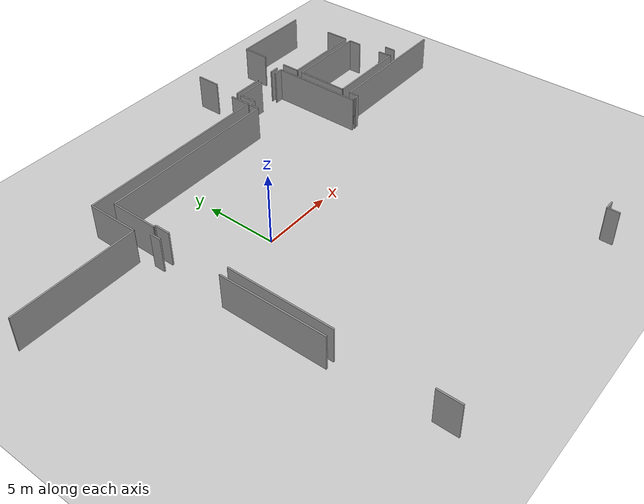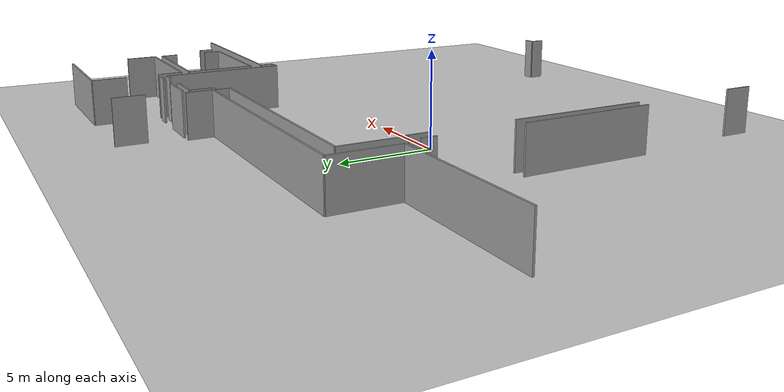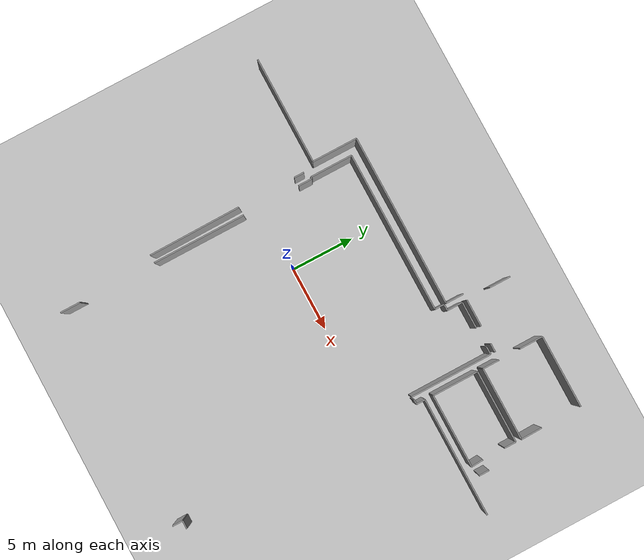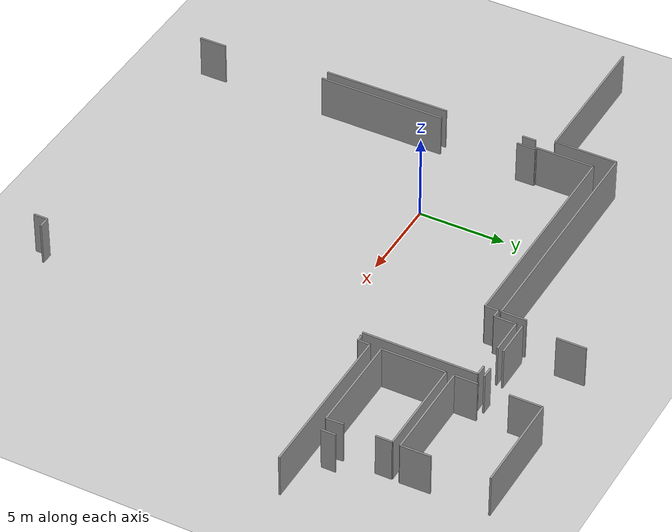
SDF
<sdf version="1.6">
 <world name="default">
  <model name="ground_plane">
   <static>1</static>
   <link name="link">
    <collision name="collision">
     <geometry><plane><normal>0 0 1</normal><size>100 100</size></plane></geometry>
     <surface><friction><ode><mu>100</mu><mu2>50</mu2></ode></friction></surface>
    </collision>
    <visual name="visual">
     <cast_shadows>0</cast_shadows>
     <geometry><plane><normal>0 0 1</normal><size>100 100</size></plane></geometry>
     <material>
      <script><uri>file://media/materials/scripts/gazebo.material</uri><name>Gazebo/Grey</name></script>
     </material>
    </visual>
   </link>
  </model>
  <model name="50053292">
   <static>1</static>
   <link name="Wall_103">
    <collision name="Wall_103_Collision">
     <geometry><box><size>0.788726670011 0.1 2.5</size></box></geometry>
     <pose>0.394363335006 0 1.25 0 0 0</pose>
    </collision>
    <visual name="Wall_103_Visual">
     <pose>0.394363335006 0 1.25 0 0 0</pose>
     <geometry><box><size>0.788726670011 0.1 2.5</size></box></geometry>
     <material>
      <script><uri>file://media/materials/scripts/gazebo.material</uri><name>Gazebo/Grey</name></script>
      <ambient>1 1 1 1</ambient>
     </material>
    </visual>
    <pose>42.8368758295 -31.9993141507 0 0 0 -1.57079632679</pose>
   </link>
   <link name="Wall_104">
    <collision name="Wall_104_Collision">
     <geometry><box><size>7.30363237276 0.1 2.5</size></box></geometry>
     <pose>3.65181618638 0 1.25 0 0 0</pose>
    </collision>
    <visual name="Wall_104_Visual">
     <pose>3.65181618638 0 1.25 0 0 0</pose>
     <geometry><box><size>7.30363237276 0.1 2.5</size></box></geometry>
     <material>
      <script><uri>file://media/materials/scripts/gazebo.material</uri><name>Gazebo/Grey</name></script>
      <ambient>1 1 1 1</ambient>
     </material>
    </visual>
    <pose>42.8368758295 -37.3597342969 0 0 0 -1.56291863991</pose>
   </link>
   <link name="Wall_106">
    <collision name="Wall_106_Collision">
     <geometry><box><size>0.652953914739 0.1 2.5</size></box></geometry>
     <pose>0.326476957369 0 1.25 0 0 0</pose>
    </collision>
    <visual name="Wall_106_Visual">
     <pose>0.326476957369 0 1.25 0 0 0</pose>
     <geometry><box><size>0.652953914739 0.1 2.5</size></box></geometry>
     <material>
      <script><uri>file://media/materials/scripts/gazebo.material</uri><name>Gazebo/Grey</name></script>
      <ambient>1 1 1 1</ambient>
     </material>
    </visual>
    <pose>61.5117896221 -51.4994062323 0 0 0 3.14159265359</pose>
   </link>
   <link name="Wall_107">
    <collision name="Wall_107_Collision">
     <geometry><box><size>0.817811759775 0.1 2.5</size></box></geometry>
     <pose>0.408905879887 0 1.25 0 0 0</pose>
    </collision>
    <visual name="Wall_107_Visual">
     <pose>0.408905879887 0 1.25 0 0 0</pose>
     <geometry><box><size>0.817811759775 0.1 2.5</size></box></geometry>
     <material>
      <script><uri>file://media/materials/scripts/gazebo.material</uri><name>Gazebo/Grey</name></script>
      <ambient>1 1 1 1</ambient>
     </material>
    </visual>
    <pose>60.8588357073 -51.4994062323 0 0 0 -1.57079632679</pose>
   </link>
   <link name="Wall_108">
    <collision name="Wall_108_Collision">
     <geometry><box><size>1.58507388756 0.1 2.5</size></box></geometry>
     <pose>0.792536943779 0 1.25 0 0 0</pose>
    </collision>
    <visual name="Wall_108_Visual">
     <pose>0.792536943779 0 1.25 0 0 0</pose>
     <geometry><box><size>1.58507388756 0.1 2.5</size></box></geometry>
     <material>
      <script><uri>file://media/materials/scripts/gazebo.material</uri><name>Gazebo/Grey</name></script>
      <ambient>1 1 1 1</ambient>
     </material>
    </visual>
    <pose>43.5124373686 -52.3172179921 0 0 0 1.57079632679</pose>
   </link>
   <link name="Wall_109">
    <collision name="Wall_109_Collision">
     <geometry><box><size>7.33985736875 0.1 2.5</size></box></geometry>
     <pose>3.66992868438 0 1.25 0 0 0</pose>
    </collision>
    <visual name="Wall_109_Visual">
     <pose>3.66992868438 0 1.25 0 0 0</pose>
     <geometry><box><size>7.33985736875 0.1 2.5</size></box></geometry>
     <material>
      <script><uri>file://media/materials/scripts/gazebo.material</uri><name>Gazebo/Grey</name></script>
      <ambient>1 1 1 1</ambient>
     </material>
    </visual>
    <pose>43.5124373686 -44.6627590192 0 0 0 1.57079632679</pose>
   </link>
   <link name="Wall_110">
    <collision name="Wall_110_Collision">
     <geometry><box><size>1.09100838895 0.1 2.5</size></box></geometry>
     <pose>0.545504194476 0 1.25 0 0 0</pose>
    </collision>
    <visual name="Wall_110_Visual">
     <pose>0.545504194476 0 1.25 0 0 0</pose>
     <geometry><box><size>1.09100838895 0.1 2.5</size></box></geometry>
     <material>
      <script><uri>file://media/materials/scripts/gazebo.material</uri><name>Gazebo/Grey</name></script>
      <ambient>1 1 1 1</ambient>
     </material>
    </visual>
    <pose>43.5124373686 -32.7880408207 0 0 0 1.57079632679</pose>
   </link>
   <link name="Wall_111">
    <collision name="Wall_111_Collision">
     <geometry><box><size>0.141488165925 0.1 2.5</size></box></geometry>
     <pose>0.0707440829624 0 1.25 0 0 0</pose>
    </collision>
    <visual name="Wall_111_Visual">
     <pose>0.0707440829624 0 1.25 0 0 0</pose>
     <geometry><box><size>0.141488165925 0.1 2.5</size></box></geometry>
     <material>
      <script><uri>file://media/materials/scripts/gazebo.material</uri><name>Gazebo/Grey</name></script>
      <ambient>1 1 1 1</ambient>
     </material>
    </visual>
    <pose>43.5124373686 -31.6970324318 0 0 0 3.14159265359</pose>
   </link>
   <link name="Wall_112">
    <collision name="Wall_112_Collision">
     <geometry><box><size>3.34643644146 0.1 2.5</size></box></geometry>
     <pose>1.67321822073 0 1.25 0 0 0</pose>
    </collision>
    <visual name="Wall_112_Visual">
     <pose>1.67321822073 0 1.25 0 0 0</pose>
     <geometry><box><size>3.34643644146 0.1 2.5</size></box></geometry>
     <material>
      <script><uri>file://media/materials/scripts/gazebo.material</uri><name>Gazebo/Grey</name></script>
      <ambient>1 1 1 1</ambient>
     </material>
    </visual>
    <pose>43.3709492027 -31.6970324318 0 0 0 1.57079632679</pose>
   </link>
   <link name="Wall_113">
    <collision name="Wall_113_Collision">
     <geometry><box><size>12.7339349332 0.1 2.5</size></box></geometry>
     <pose>6.36696746661 0 1.25 0 0 0</pose>
    </collision>
    <visual name="Wall_113_Visual">
     <pose>6.36696746661 0 1.25 0 0 0</pose>
     <geometry><box><size>12.7339349332 0.1 2.5</size></box></geometry>
     <material>
      <script><uri>file://media/materials/scripts/gazebo.material</uri><name>Gazebo/Grey</name></script>
      <ambient>1 1 1 1</ambient>
     </material>
    </visual>
    <pose>43.3709492027 -28.3505959903 0 0 0 0.0</pose>
   </link>
   <link name="Wall_114">
    <collision name="Wall_114_Collision">
     <geometry><box><size>0.751004959706 0.1 2.5</size></box></geometry>
     <pose>0.375502479853 0 1.25 0 0 0</pose>
    </collision>
    <visual name="Wall_114_Visual">
     <pose>0.375502479853 0 1.25 0 0 0</pose>
     <geometry><box><size>0.751004959706 0.1 2.5</size></box></geometry>
     <material>
      <script><uri>file://media/materials/scripts/gazebo.material</uri><name>Gazebo/Grey</name></script>
      <ambient>1 1 1 1</ambient>
     </material>
    </visual>
    <pose>56.1048841359 -28.3505959903 0 0 0 1.57079632679</pose>
   </link>
   <link name="Wall_115">
    <collision name="Wall_115_Collision">
     <geometry><box><size>0.496986708495 0.1 2.5</size></box></geometry>
     <pose>0.248493354248 0 1.25 0 0 0</pose>
    </collision>
    <visual name="Wall_115_Visual">
     <pose>0.248493354248 0 1.25 0 0 0</pose>
     <geometry><box><size>0.496986708495 0.1 2.5</size></box></geometry>
     <material>
      <script><uri>file://media/materials/scripts/gazebo.material</uri><name>Gazebo/Grey</name></script>
      <ambient>1 1 1 1</ambient>
     </material>
    </visual>
    <pose>56.1048841359 -27.5995910306 0 0 0 0.0</pose>
   </link>
   <link name="Wall_116">
    <collision name="Wall_116_Collision">
     <geometry><box><size>1.23579879214 0.1 2.5</size></box></geometry>
     <pose>0.617899396072 0 1.25 0 0 0</pose>
    </collision>
    <visual name="Wall_116_Visual">
     <pose>0.617899396072 0 1.25 0 0 0</pose>
     <geometry><box><size>1.23579879214 0.1 2.5</size></box></geometry>
     <material>
      <script><uri>file://media/materials/scripts/gazebo.material</uri><name>Gazebo/Grey</name></script>
      <ambient>1 1 1 1</ambient>
     </material>
    </visual>
    <pose>56.6018708444 -27.5995910306 0 0 0 1.57079632679</pose>
   </link>
   <link name="Wall_117">
    <collision name="Wall_117_Collision">
     <geometry><box><size>2.10949456718 0.1 2.5</size></box></geometry>
     <pose>1.05474728359 0 1.25 0 0 0</pose>
    </collision>
    <visual name="Wall_117_Visual">
     <pose>1.05474728359 0 1.25 0 0 0</pose>
     <geometry><box><size>2.10949456718 0.1 2.5</size></box></geometry>
     <material>
      <script><uri>file://media/materials/scripts/gazebo.material</uri><name>Gazebo/Grey</name></script>
      <ambient>1 1 1 1</ambient>
     </material>
    </visual>
    <pose>56.6018708444 -26.3637922385 0 0 0 0.0</pose>
   </link>
   <link name="Wall_118">
    <collision name="Wall_118_Collision">
     <geometry><box><size>0.642666175565 0.1 2.5</size></box></geometry>
     <pose>0.321333087782 0 1.25 0 0 0</pose>
    </collision>
    <visual name="Wall_118_Visual">
     <pose>0.321333087782 0 1.25 0 0 0</pose>
     <geometry><box><size>0.642666175565 0.1 2.5</size></box></geometry>
     <material>
      <script><uri>file://media/materials/scripts/gazebo.material</uri><name>Gazebo/Grey</name></script>
      <ambient>1 1 1 1</ambient>
     </material>
    </visual>
    <pose>60.2180746687 -26.3637922385 0 0 0 0.0</pose>
   </link>
   <link name="Wall_119">
    <collision name="Wall_119_Collision">
     <geometry><box><size>6.49702481123 0.1 2.5</size></box></geometry>
     <pose>3.24851240562 0 1.25 0 0 0</pose>
    </collision>
    <visual name="Wall_119_Visual">
     <pose>3.24851240562 0 1.25 0 0 0</pose>
     <geometry><box><size>6.49702481123 0.1 2.5</size></box></geometry>
     <material>
      <script><uri>file://media/materials/scripts/gazebo.material</uri><name>Gazebo/Grey</name></script>
      <ambient>1 1 1 1</ambient>
     </material>
    </visual>
    <pose>60.8607408442 -26.3637922385 0 0 0 -1.57079632679</pose>
   </link>
   <link name="Wall_123">
    <collision name="Wall_123_Collision">
     <geometry><box><size>0.0834449955229 0.1 2.5</size></box></geometry>
     <pose>0.0417224977615 0 1.25 0 0 0</pose>
    </collision>
    <visual name="Wall_123_Visual">
     <pose>0.0417224977615 0 1.25 0 0 0</pose>
     <geometry><box><size>0.0834449955229 0.1 2.5</size></box></geometry>
     <material>
      <script><uri>file://media/materials/scripts/gazebo.material</uri><name>Gazebo/Grey</name></script>
      <ambient>1 1 1 1</ambient>
     </material>
    </visual>
    <pose>61.1249198255 -32.869199652 0 0 0 1.57079632679</pose>
   </link>
   <link name="Wall_124">
    <collision name="Wall_124_Collision">
     <geometry><box><size>0.358927788962 0.1 2.5</size></box></geometry>
     <pose>0.179463894481 0 1.25 0 0 0</pose>
    </collision>
    <visual name="Wall_124_Visual">
     <pose>0.179463894481 0 1.25 0 0 0</pose>
     <geometry><box><size>0.358927788962 0.1 2.5</size></box></geometry>
     <material>
      <script><uri>file://media/materials/scripts/gazebo.material</uri><name>Gazebo/Grey</name></script>
      <ambient>1 1 1 1</ambient>
     </material>
    </visual>
    <pose>61.1249198255 -32.7857546565 0 0 0 0.0</pose>
   </link>
   <link name="Wall_125">
    <collision name="Wall_125_Collision">
     <geometry><box><size>0.684833205266 0.1 2.5</size></box></geometry>
     <pose>0.342416602633 0 1.25 0 0 0</pose>
    </collision>
    <visual name="Wall_125_Visual">
     <pose>0.342416602633 0 1.25 0 0 0</pose>
     <geometry><box><size>0.684833205266 0.1 2.5</size></box></geometry>
     <material>
      <script><uri>file://media/materials/scripts/gazebo.material</uri><name>Gazebo/Grey</name></script>
      <ambient>1 1 1 1</ambient>
     </material>
    </visual>
    <pose>61.4838476145 -32.7857546565 0 0 0 1.57079632679</pose>
   </link>
   <link name="Wall_126">
    <collision name="Wall_126_Collision">
     <geometry><box><size>9.33745689628 0.1 2.5</size></box></geometry>
     <pose>4.66872844814 0 1.25 0 0 0</pose>
    </collision>
    <visual name="Wall_126_Visual">
     <pose>4.66872844814 0 1.25 0 0 0</pose>
     <geometry><box><size>9.33745689628 0.1 2.5</size></box></geometry>
     <material>
      <script><uri>file://media/materials/scripts/gazebo.material</uri><name>Gazebo/Grey</name></script>
      <ambient>1 1 1 1</ambient>
     </material>
    </visual>
    <pose>61.4838476145 -32.1009214512 0 0 0 0.0</pose>
   </link>
   <link name="Wall_152">
    <collision name="Wall_152_Collision">
     <geometry><box><size>0.667813982435 0.1 2.5</size></box></geometry>
     <pose>0.333906991217 0 1.25 0 0 0</pose>
    </collision>
    <visual name="Wall_152_Visual">
     <pose>0.333906991217 0 1.25 0 0 0</pose>
     <geometry><box><size>0.667813982435 0.1 2.5</size></box></geometry>
     <material>
      <script><uri>file://media/materials/scripts/gazebo.material</uri><name>Gazebo/Grey</name></script>
      <ambient>1 1 1 1</ambient>
     </material>
    </visual>
    <pose>60.8639160724 -26.0029593126 0 0 0 3.14159265359</pose>
   </link>
   <link name="Wall_153">
    <collision name="Wall_153_Collision">
     <geometry><box><size>2.17083997485 0.1 2.5</size></box></geometry>
     <pose>1.08541998743 0 1.25 0 0 0</pose>
    </collision>
    <visual name="Wall_153_Visual">
     <pose>1.08541998743 0 1.25 0 0 0</pose>
     <geometry><box><size>2.17083997485 0.1 2.5</size></box></geometry>
     <material>
      <script><uri>file://media/materials/scripts/gazebo.material</uri><name>Gazebo/Grey</name></script>
      <ambient>1 1 1 1</ambient>
     </material>
    </visual>
    <pose>58.7666143812 -26.0029593126 0 0 0 3.14159265359</pose>
   </link>
   <link name="Wall_154">
    <collision name="Wall_154_Collision">
     <geometry><box><size>1.67652045799 0.1 2.5</size></box></geometry>
     <pose>0.838260228997 0 1.25 0 0 0</pose>
    </collision>
    <visual name="Wall_154_Visual">
     <pose>0.838260228997 0 1.25 0 0 0</pose>
     <geometry><box><size>1.67652045799 0.1 2.5</size></box></geometry>
     <material>
      <script><uri>file://media/materials/scripts/gazebo.material</uri><name>Gazebo/Grey</name></script>
      <ambient>1 1 1 1</ambient>
     </material>
    </visual>
    <pose>56.5957744064 -24.10633204 0 0 0 1.57079632679</pose>
   </link>
   <link name="Wall_158">
    <collision name="Wall_158_Collision">
     <geometry><box><size>5.75414843557 0.1 2.5</size></box></geometry>
     <pose>2.87707421778 0 1.25 0 0 0</pose>
    </collision>
    <visual name="Wall_158_Visual">
     <pose>2.87707421778 0 1.25 0 0 0</pose>
     <geometry><box><size>5.75414843557 0.1 2.5</size></box></geometry>
     <material>
      <script><uri>file://media/materials/scripts/gazebo.material</uri><name>Gazebo/Grey</name></script>
      <ambient>1 1 1 1</ambient>
     </material>
    </visual>
    <pose>67.2597146105 -27.3566225733 0 0 0 3.14159265359</pose>
   </link>
   <link name="Wall_159">
    <collision name="Wall_159_Collision">
     <geometry><box><size>1.31429043177 0.1 2.5</size></box></geometry>
     <pose>0.657145215884 0 1.25 0 0 0</pose>
    </collision>
    <visual name="Wall_159_Visual">
     <pose>0.657145215884 0 1.25 0 0 0</pose>
     <geometry><box><size>1.31429043177 0.1 2.5</size></box></geometry>
     <material>
      <script><uri>file://media/materials/scripts/gazebo.material</uri><name>Gazebo/Grey</name></script>
      <ambient>1 1 1 1</ambient>
     </material>
    </visual>
    <pose>61.5055661749 -27.3566225733 0 0 0 1.57079632679</pose>
   </link>
   <link name="Wall_160">
    <collision name="Wall_160_Collision">
     <geometry><box><size>1.84429951292 0.1 2.5</size></box></geometry>
     <pose>0.92214975646 0 1.25 0 0 0</pose>
    </collision>
    <visual name="Wall_160_Visual">
     <pose>0.92214975646 0 1.25 0 0 0</pose>
     <geometry><box><size>1.84429951292 0.1 2.5</size></box></geometry>
     <material>
      <script><uri>file://media/materials/scripts/gazebo.material</uri><name>Gazebo/Grey</name></script>
      <ambient>1 1 1 1</ambient>
     </material>
    </visual>
    <pose>61.5055661749 -24.3084035588 0 0 0 1.57079632679</pose>
   </link>
   <link name="Wall_161">
    <collision name="Wall_161_Collision">
     <geometry><box><size>5.72099905378 0.1 2.5</size></box></geometry>
     <pose>2.86049952689 0 1.25 0 0 0</pose>
    </collision>
    <visual name="Wall_161_Visual">
     <pose>2.86049952689 0 1.25 0 0 0</pose>
     <geometry><box><size>5.72099905378 0.1 2.5</size></box></geometry>
     <material>
      <script><uri>file://media/materials/scripts/gazebo.material</uri><name>Gazebo/Grey</name></script>
      <ambient>1 1 1 1</ambient>
     </material>
    </visual>
    <pose>61.5055661749 -22.4641040459 0 0 0 0.0</pose>
   </link>
   <link name="Wall_163">
    <collision name="Wall_163_Collision">
     <geometry><box><size>1.68205451247 0.1 2.5</size></box></geometry>
     <pose>0.841027256235 0 1.25 0 0 0</pose>
    </collision>
    <visual name="Wall_163_Visual">
     <pose>0.841027256235 0 1.25 0 0 0</pose>
     <geometry><box><size>1.68205451247 0.1 2.5</size></box></geometry>
     <material>
      <script><uri>file://media/materials/scripts/gazebo.material</uri><name>Gazebo/Grey</name></script>
      <ambient>1 1 1 1</ambient>
     </material>
    </visual>
    <pose>67.2265652287 -25.6748947412 0 0 0 -1.55108737697</pose>
   </link>
   <link name="Wall_169">
    <collision name="Wall_169_Collision">
     <geometry><box><size>0.810064203113 0.1 2.5</size></box></geometry>
     <pose>0.405032101556 0 1.25 0 0 0</pose>
    </collision>
    <visual name="Wall_169_Visual">
     <pose>0.405032101556 0 1.25 0 0 0</pose>
     <geometry><box><size>0.810064203113 0.1 2.5</size></box></geometry>
     <material>
      <script><uri>file://media/materials/scripts/gazebo.material</uri><name>Gazebo/Grey</name></script>
      <ambient>1 1 1 1</ambient>
     </material>
    </visual>
    <pose>68.0978478304 -31.2658364503 0 0 0 1.57079632679</pose>
   </link>
   <link name="Wall_176">
    <collision name="Wall_176_Collision">
     <geometry><box><size>5.78183642495 0.1 2.5</size></box></geometry>
     <pose>2.89091821247 0 1.25 0 0 0</pose>
    </collision>
    <visual name="Wall_176_Visual">
     <pose>2.89091821247 0 1.25 0 0 0</pose>
     <geometry><box><size>5.78183642495 0.1 2.5</size></box></geometry>
     <material>
      <script><uri>file://media/materials/scripts/gazebo.material</uri><name>Gazebo/Grey</name></script>
      <ambient>1 1 1 1</ambient>
     </material>
    </visual>
    <pose>67.2874025999 -31.4442842718 0 0 0 3.14159265359</pose>
   </link>
   <link name="Wall_177">
    <collision name="Wall_177_Collision">
     <geometry><box><size>3.64579695051 0.1 2.5</size></box></geometry>
     <pose>1.82289847526 0 1.25 0 0 0</pose>
    </collision>
    <visual name="Wall_177_Visual">
     <pose>1.82289847526 0 1.25 0 0 0</pose>
     <geometry><box><size>3.64579695051 0.1 2.5</size></box></geometry>
     <material>
      <script><uri>file://media/materials/scripts/gazebo.material</uri><name>Gazebo/Grey</name></script>
      <ambient>1 1 1 1</ambient>
     </material>
    </visual>
    <pose>61.5055661749 -31.4442842718 0 0 0 1.57079632679</pose>
   </link>
   <link name="Wall_178">
    <collision name="Wall_178_Collision">
     <geometry><box><size>5.72099905378 0.1 2.5</size></box></geometry>
     <pose>2.86049952689 0 1.25 0 0 0</pose>
    </collision>
    <visual name="Wall_178_Visual">
     <pose>2.86049952689 0 1.25 0 0 0</pose>
     <geometry><box><size>5.72099905378 0.1 2.5</size></box></geometry>
     <material>
      <script><uri>file://media/materials/scripts/gazebo.material</uri><name>Gazebo/Grey</name></script>
      <ambient>1 1 1 1</ambient>
     </material>
    </visual>
    <pose>61.5055661749 -27.7984873213 0 0 0 0.0</pose>
   </link>
   <link name="Wall_179">
    <collision name="Wall_179_Collision">
     <geometry><box><size>0.927674653424 0.1 2.5</size></box></geometry>
     <pose>0.463837326712 0 1.25 0 0 0</pose>
    </collision>
    <visual name="Wall_179_Visual">
     <pose>0.463837326712 0 1.25 0 0 0</pose>
     <geometry><box><size>0.927674653424 0.1 2.5</size></box></geometry>
     <material>
      <script><uri>file://media/materials/scripts/gazebo.material</uri><name>Gazebo/Grey</name></script>
      <ambient>1 1 1 1</ambient>
     </material>
    </visual>
    <pose>67.2265652287 -27.7984873213 0 0 0 -1.57079632679</pose>
   </link>
   <link name="Wall_180">
    <collision name="Wall_180_Collision">
     <geometry><box><size>0.957170988686 0.1 2.5</size></box></geometry>
     <pose>0.478585494343 0 1.25 0 0 0</pose>
    </collision>
    <visual name="Wall_180_Visual">
     <pose>0.478585494343 0 1.25 0 0 0</pose>
     <geometry><box><size>0.957170988686 0.1 2.5</size></box></geometry>
     <material>
      <script><uri>file://media/materials/scripts/gazebo.material</uri><name>Gazebo/Grey</name></script>
      <ambient>1 1 1 1</ambient>
     </material>
    </visual>
    <pose>67.2265652287 -30.4890486381 0 0 0 -1.50719388949</pose>
   </link>
   <link name="Wall_181">
    <collision name="Wall_181_Collision">
     <geometry><box><size>1.43139284558 0.1 2.5</size></box></geometry>
     <pose>0.715696422788 0 1.25 0 0 0</pose>
    </collision>
    <visual name="Wall_181_Visual">
     <pose>0.715696422788 0 1.25 0 0 0</pose>
     <geometry><box><size>1.43139284558 0.1 2.5</size></box></geometry>
     <material>
      <script><uri>file://media/materials/scripts/gazebo.material</uri><name>Gazebo/Grey</name></script>
      <ambient>1 1 1 1</ambient>
     </material>
    </visual>
    <pose>56.0991687253 -26.0108338784 0 0 0 -1.57079632679</pose>
   </link>
   <link name="Wall_182">
    <collision name="Wall_182_Collision">
     <geometry><box><size>13.6566562308 0.1 2.5</size></box></geometry>
     <pose>6.82832811538 0 1.25 0 0 0</pose>
    </collision>
    <visual name="Wall_182_Visual">
     <pose>6.82832811538 0 1.25 0 0 0</pose>
     <geometry><box><size>13.6566562308 0.1 2.5</size></box></geometry>
     <material>
      <script><uri>file://media/materials/scripts/gazebo.material</uri><name>Gazebo/Grey</name></script>
      <ambient>1 1 1 1</ambient>
     </material>
    </visual>
    <pose>56.0991687253 -27.442226724 0 0 0 3.14159265359</pose>
   </link>
   <link name="Wall_183">
    <collision name="Wall_183_Collision">
     <geometry><box><size>3.59308816338 0.1 2.5</size></box></geometry>
     <pose>1.79654408169 0 1.25 0 0 0</pose>
    </collision>
    <visual name="Wall_183_Visual">
     <pose>1.79654408169 0 1.25 0 0 0</pose>
     <geometry><box><size>3.59308816338 0.1 2.5</size></box></geometry>
     <material>
      <script><uri>file://media/materials/scripts/gazebo.material</uri><name>Gazebo/Grey</name></script>
      <ambient>1 1 1 1</ambient>
     </material>
    </visual>
    <pose>42.4425124945 -27.442226724 0 0 0 -1.57079632679</pose>
   </link>
   <link name="Wall_184">
    <collision name="Wall_184_Collision">
     <geometry><box><size>8.54136369698 0.1 2.5</size></box></geometry>
     <pose>4.27068184849 0 1.25 0 0 0</pose>
    </collision>
    <visual name="Wall_184_Visual">
     <pose>4.27068184849 0 1.25 0 0 0</pose>
     <geometry><box><size>8.54136369698 0.1 2.5</size></box></geometry>
     <material>
      <script><uri>file://media/materials/scripts/gazebo.material</uri><name>Gazebo/Grey</name></script>
      <ambient>1 1 1 1</ambient>
     </material>
    </visual>
    <pose>42.4425124945 -31.0353148874 0 0 0 3.14159265359</pose>
   </link>
   <pose>-48.55 35.9875877157 0 0 0 0</pose>
  </model>
 </world>
</sdf>
